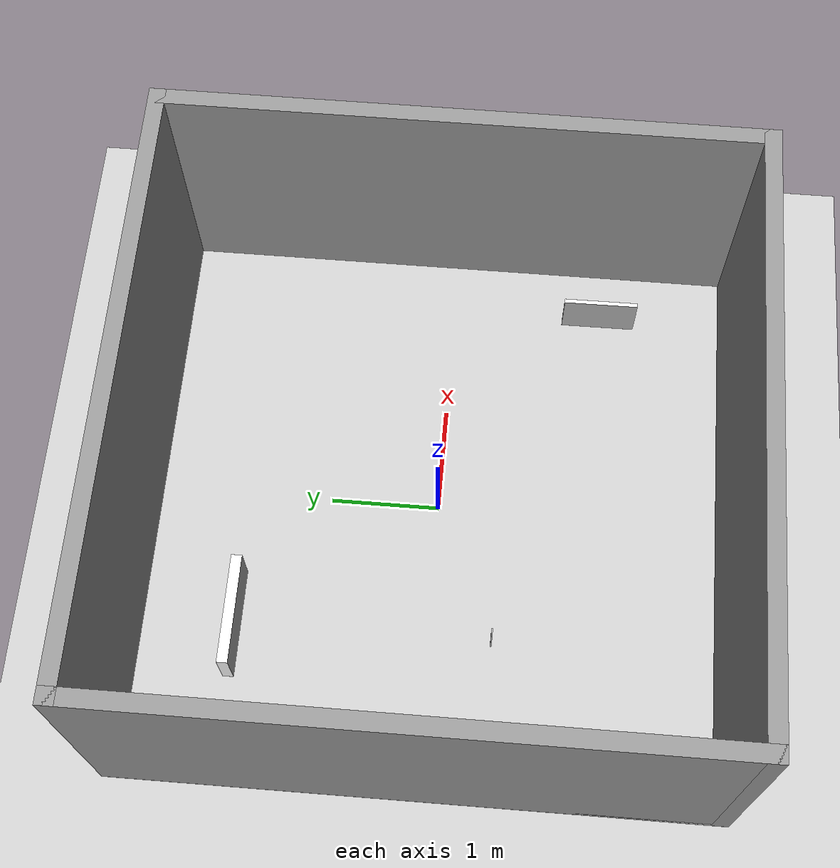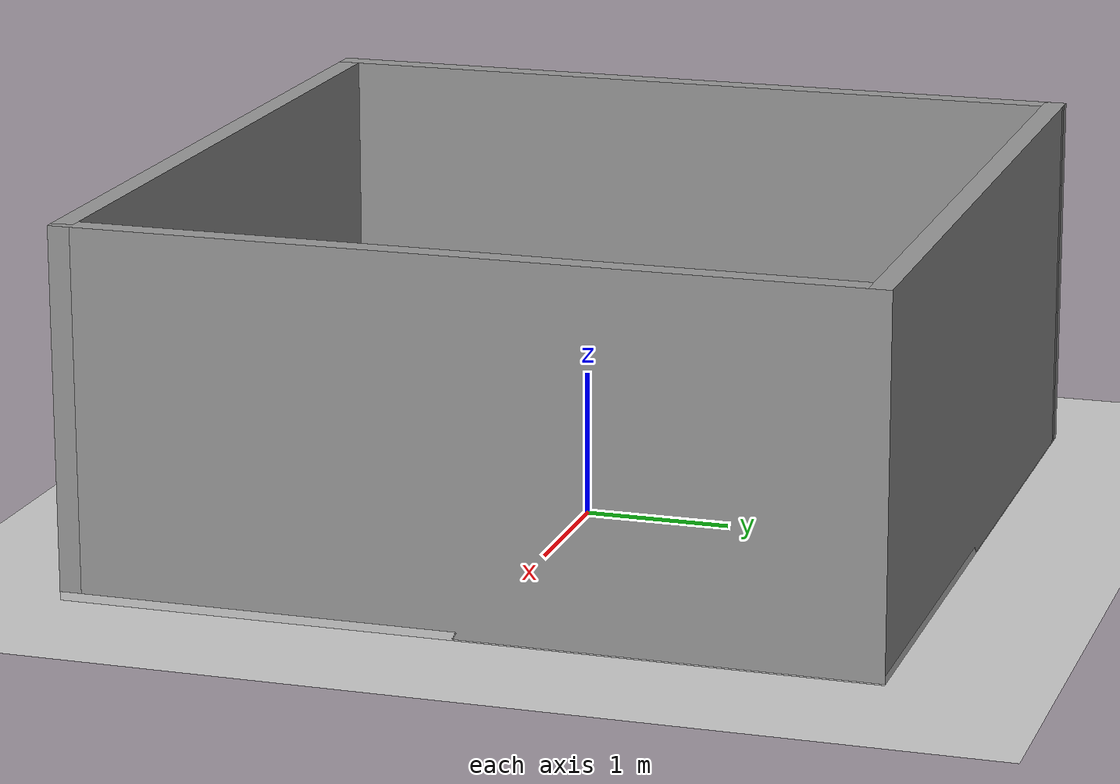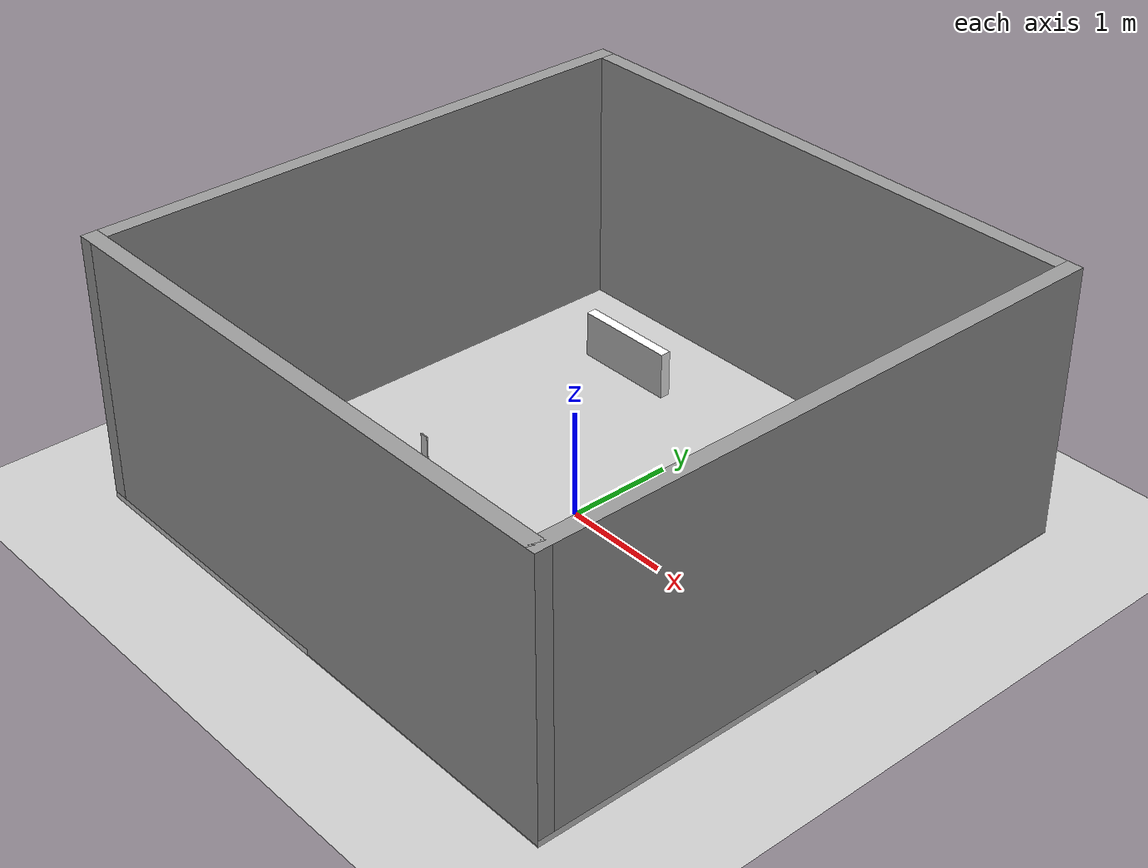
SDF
<sdf version="1.7">
 <world name="default">
  <light name="sun" type="directional">
   <pose>0 0 10 0 -0 0</pose>
   <diffuse>0.8 0.8 0.8 1</diffuse>
   <specular>0.2 0.2 0.2 1</specular>
   <attenuation>
    <range>1000</range>
    <constant>0.9</constant>
    <linear>0.01</linear>
    <quadratic>0.001</quadratic>
   </attenuation>
   <direction>-0.5 0.1 -0.9</direction>
   <spot><inner_angle>0</inner_angle><outer_angle>0</outer_angle><falloff>0</falloff></spot>
  </light>
  <model name="ground_plane">
   <static>1</static>
   <link name="link">
    <collision name="collision">
     <geometry><plane><normal>0 0 1</normal><size>100 100</size></plane></geometry>
     <surface><friction><ode><mu>100</mu><mu2>50</mu2></ode></friction></surface>
    </collision>
    <visual name="visual">
     <cast_shadows>0</cast_shadows>
     <geometry><plane><normal>0 0 1</normal><size>100 100</size></plane></geometry>
     <material>
      <script><uri>file://media/materials/scripts/gazebo.material</uri><name>Gazebo/Grey</name></script>
     </material>
    </visual>
   </link>
  </model>
  <gravity>0 0 -9.8</gravity>
  <magnetic_field>6e-06 2.3e-05 -4.2e-05</magnetic_field>
  <atmosphere type="adiabatic"/>
  <physics type="ode">
   <max_step_size>0.001</max_step_size>
   <real_time_factor>1</real_time_factor>
   <real_time_update_rate>1000</real_time_update_rate>
  </physics>
  <scene><ambient>0.4 0.4 0.4 1</ambient><background>0.7 0.7 0.7 1</background><shadows>1</shadows></scene>
  <audio><device>default</device></audio>
  <spherical_coordinates>
   <surface_model>EARTH_WGS84</surface_model>
   <latitude_deg>0</latitude_deg>
   <longitude_deg>0</longitude_deg>
   <elevation>0</elevation>
   <heading_deg>0</heading_deg>
  </spherical_coordinates>
  <model name="community_base">
   <link name="Wall_10">
    <collision name="Wall_10_Collision">
     <geometry><box><size>5.5 0.15 2.5</size></box></geometry>
     <pose>0 0 1.25 0 -0 0</pose>
    </collision>
    <visual name="Wall_10_Visual">
     <pose>0 0 1.25 0 -0 0</pose>
     <geometry><box><size>5.5 0.15 2.5</size></box></geometry>
     <material>
      <script><uri>file://media/materials/scripts/gazebo.material</uri><name>Gazebo/Grey</name></script>
      <ambient>1 1 1 1</ambient>
     </material>
     <meta><layer>0</layer></meta>
    </visual>
    <pose>-2.675 0 0 0 -0 1.5708</pose>
   </link>
   <link name="Wall_7">
    <collision name="Wall_7_Collision">
     <geometry><box><size>5.5 0.15 2.5</size></box></geometry>
     <pose>0 0 1.25 0 -0 0</pose>
    </collision>
    <visual name="Wall_7_Visual">
     <pose>0 0 1.25 0 -0 0</pose>
     <geometry><box><size>5.5 0.15 2.5</size></box></geometry>
     <material>
      <script><uri>file://media/materials/scripts/gazebo.material</uri><name>Gazebo/Grey</name></script>
      <ambient>1 1 1 1</ambient>
     </material>
     <meta><layer>0</layer></meta>
    </visual>
    <pose>-0 2.675 0 0 -0 0</pose>
   </link>
   <link name="Wall_8">
    <collision name="Wall_8_Collision">
     <geometry><box><size>5.5 0.15 2.5</size></box></geometry>
     <pose>0 0 1.25 0 -0 0</pose>
    </collision>
    <visual name="Wall_8_Visual">
     <pose>0 0 1.25 0 -0 0</pose>
     <geometry><box><size>5.5 0.15 2.5</size></box></geometry>
     <material>
      <script><uri>file://media/materials/scripts/gazebo.material</uri><name>Gazebo/Grey</name></script>
      <ambient>1 1 1 1</ambient>
     </material>
     <meta><layer>0</layer></meta>
    </visual>
    <pose>2.675 0 0 0 -0 -1.5708</pose>
   </link>
   <link name="Wall_9">
    <collision name="Wall_9_Collision">
     <geometry><box><size>5.5 0.15 2.5</size></box></geometry>
     <pose>0 0 1.25 0 -0 0</pose>
    </collision>
    <visual name="Wall_9_Visual">
     <pose>0 0 1.25 0 -0 0</pose>
     <geometry><box><size>5.5 0.15 2.5</size></box></geometry>
     <material>
      <script><uri>file://media/materials/scripts/gazebo.material</uri><name>Gazebo/Grey</name></script>
      <ambient>1 1 1 1</ambient>
     </material>
     <meta><layer>0</layer></meta>
    </visual>
    <pose>-0 -2.675 0 0 -0 3.14159</pose>
   </link>
   <link name="link">
    <pose>0 0 0 0 -0 1.5708</pose>
    <collision name="collision"><geometry><box><size>5.5 5.5 0.1</size></box></geometry></collision>
    <visual name="visual">
     <geometry><box><size>5.5 5.5 0.1</size></box></geometry>
     <material>
      <script>
       <uri>model://community_base/materials/scripts</uri>
       <uri>model://community_base/materials/textures</uri>
       <name>Community/Ground</name>
      </script>
      <ambient>0.8 0.8 0.8 1</ambient>
     </material>
    </visual>
   </link>
   <static>1</static>
  </model>
  <model name="cp">
   <static>1</static>
   <link name="link">
    <visual name="visual"><geometry><mesh><uri>model://cp/meshes/cp.dae</uri></mesh></geometry></visual>
   </link>
   <pose>2.06116 -1.412 0 0 0 -1.56637</pose>
  </model>
  <model name="ro1">
   <static>1</static>
   <link name="link">
    <visual name="visual"><geometry><mesh><uri>model://ro1/meshes/ro1.dae</uri></mesh></geometry></visual>
   </link>
   <pose>-1.27957 1.75504 0 0 -0 0</pose>
  </model>
  <model name="ro2">
   <static>1</static>
   <link name="link">
    <visual name="visual"><geometry><mesh><uri>model://ro2/meshes/ro2.dae</uri></mesh></geometry></visual>
   </link>
   <pose>-1.28916 -0.580421 0 0 0 -3.14137</pose>
  </model>
 </world>
</sdf>
